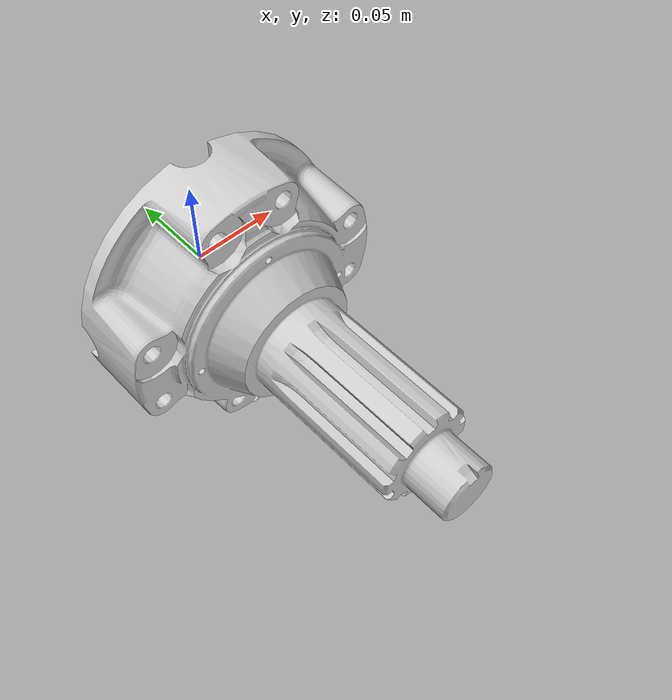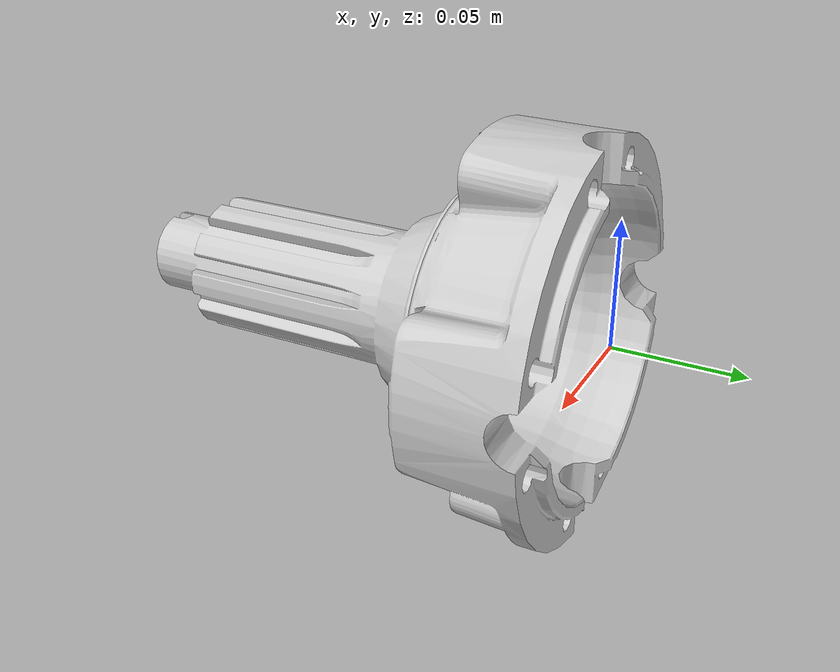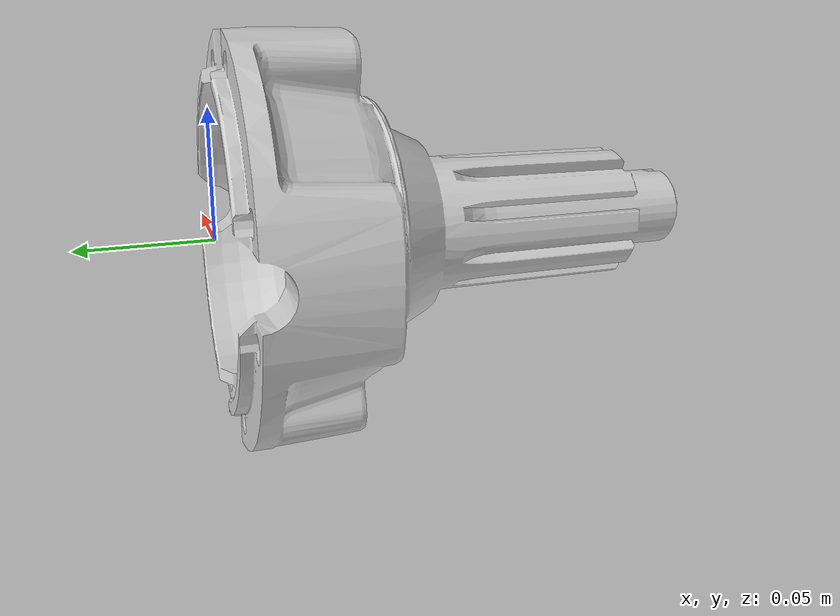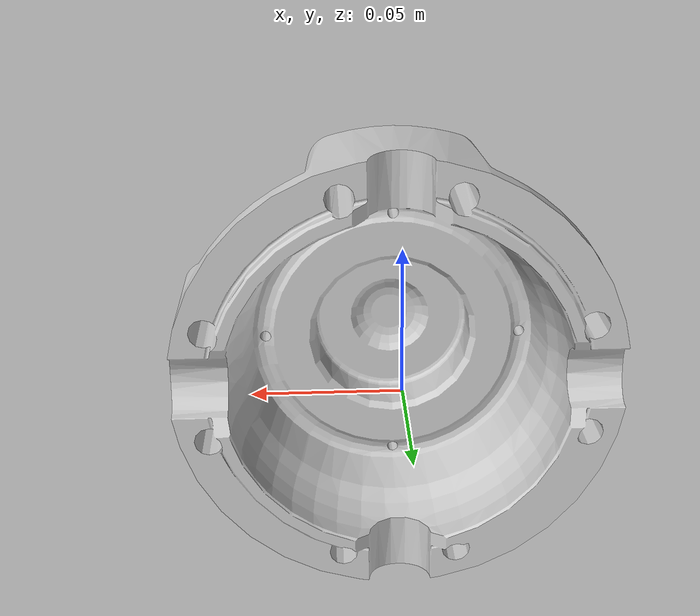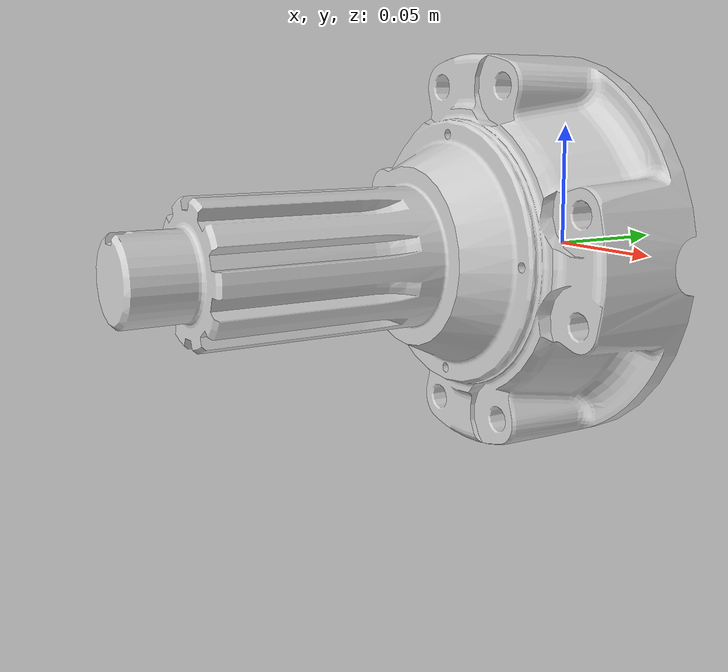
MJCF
<!-- diff.xml -->

<mujoco model="diff">
  <compiler meshdir="assets" />
  <visual>
    <global azimuth="90" elevation="-90"/>
  </visual>
  <default>
    <default class="diff">
      <material specular="0.3" shininess="0.8"/>
      <default class="visual">
        <geom type="mesh" contype="0" conaffinity="0"/>
      </default>
      <default class="collision">
        <geom type="mesh" solref="0.02 1" solimp="0.95 0.99 0.001"/>
      </default>
    </default>
  </default>
  <asset>
    <material name="diff_material" rgba="0.8 0.8 0.8 1"/>
    <mesh name="diff_mesh" file="diff.stl" scale="1 1 1"/>
  </asset>
  <worldbody>
    <body name="diff_body" childclass="diff" pos="0 0 0">
      <inertial pos="0 0 0" mass="1.0" diaginertia="0.01 0.01 0.01"/>
      <geom mesh="diff_mesh" material="diff_material" class="visual"/>
      <geom mesh="diff_mesh" material="diff_material" class="collision"/>
    </body>
  </worldbody>
</mujoco>
